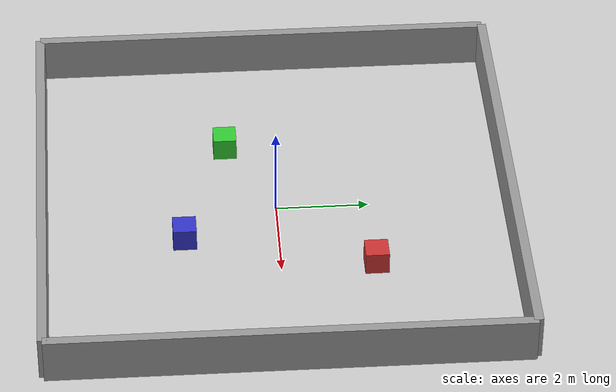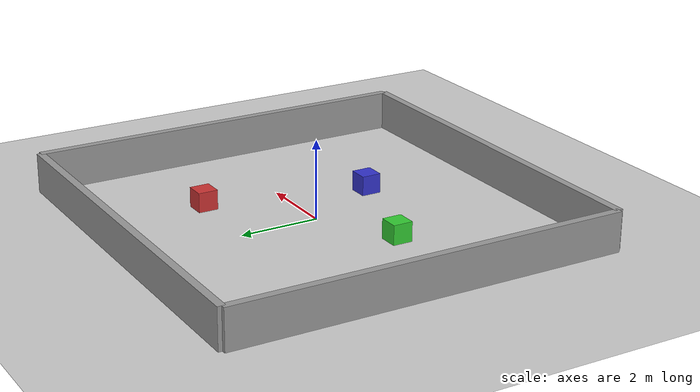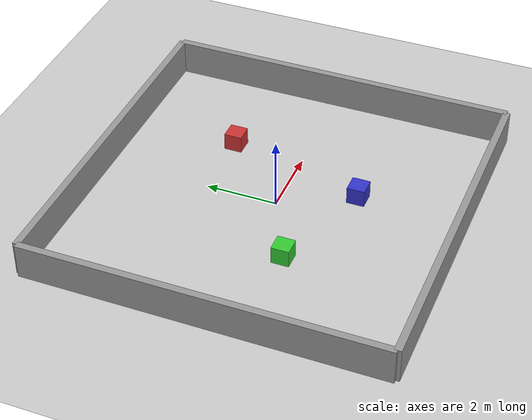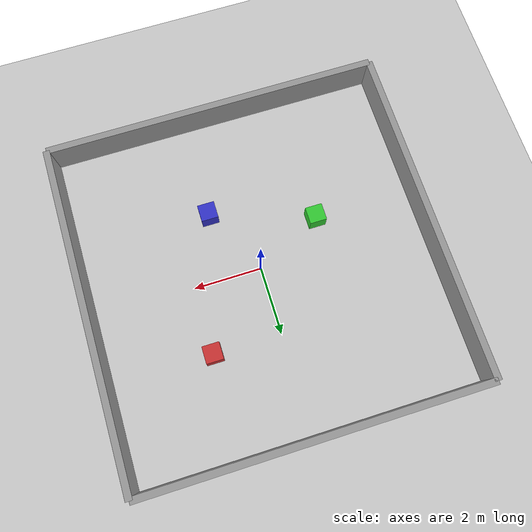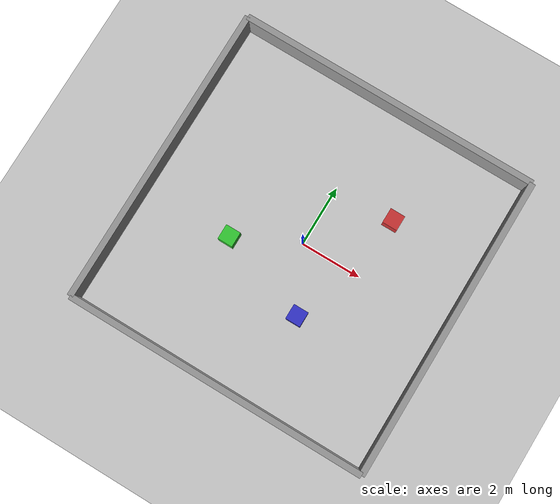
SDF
<?xml version="1.0" ?>
<sdf version="1.9">
  <world name="my_world">
    <physics name="1ms" type="ignored">
      <max_step_size>0.001</max_step_size>
      <real_time_factor>1.0</real_time_factor>
    </physics>
    <plugin filename="gz-sim-physics-system" name="gz::sim::systems::Physics"/>
    <plugin filename="gz-sim-user-commands-system" name="gz::sim::systems::UserCommands"/>
    <plugin filename="gz-sim-scene-broadcaster-system" name="gz::sim::systems::SceneBroadcaster"/>
    <plugin filename="gz-sim-sensors-system" name="gz::sim::systems::Sensors">
      <render_engine>ogre2</render_engine>
    </plugin>

    <light type="directional" name="sun">
      <cast_shadows>true</cast_shadows>
      <pose>0 0 10 0 0 0</pose>
      <diffuse>0.8 0.8 0.8 1</diffuse>
      <specular>0.2 0.2 0.2 1</specular>
      <attenuation><range>1000</range><constant>0.9</constant><linear>0.01</linear><quadratic>0.001</quadratic></attenuation>
      <direction>-0.5 0.1 -0.9</direction>
    </light>

    <model name="ground_plane">
      <static>true</static>
      <link name="link">
        <collision name="collision"><geometry><plane><normal>0 0 1</normal><size>20 20</size></plane></geometry></collision>
        <visual name="visual">
          <geometry><plane><normal>0 0 1</normal><size>20 20</size></plane></geometry>
          <material><ambient>0.8 0.8 0.8 1</ambient><diffuse>0.8 0.8 0.8 1</diffuse></material>
        </visual>
      </link>
    </model>

    <model name="wall_north">
      <static>true</static><pose>0 5 0.5 0 0 0</pose>
      <link name="link">
        <collision name="collision"><geometry><box><size>10 0.2 1</size></box></geometry></collision>
        <visual name="visual"><geometry><box><size>10 0.2 1</size></box></geometry><material><ambient>0.6 0.6 0.6 1</ambient><diffuse>0.6 0.6 0.6 1</diffuse></material></visual>
      </link>
    </model>
    <model name="wall_south">
      <static>true</static><pose>0 -5 0.5 0 0 0</pose>
      <link name="link">
        <collision name="collision"><geometry><box><size>10 0.2 1</size></box></geometry></collision>
        <visual name="visual"><geometry><box><size>10 0.2 1</size></box></geometry><material><ambient>0.6 0.6 0.6 1</ambient><diffuse>0.6 0.6 0.6 1</diffuse></material></visual>
      </link>
    </model>
    <model name="wall_east">
      <static>true</static><pose>5 0 0.5 0 0 1.5708</pose>
      <link name="link">
        <collision name="collision"><geometry><box><size>10 0.2 1</size></box></geometry></collision>
        <visual name="visual"><geometry><box><size>10 0.2 1</size></box></geometry><material><ambient>0.6 0.6 0.6 1</ambient><diffuse>0.6 0.6 0.6 1</diffuse></material></visual>
      </link>
    </model>
    <model name="wall_west">
      <static>true</static><pose>-5 0 0.5 0 0 1.5708</pose>
      <link name="link">
        <collision name="collision"><geometry><box><size>10 0.2 1</size></box></geometry></collision>
        <visual name="visual"><geometry><box><size>10 0.2 1</size></box></geometry><material><ambient>0.6 0.6 0.6 1</ambient><diffuse>0.6 0.6 0.6 1</diffuse></material></visual>
      </link>
    </model>

    <model name="obstacle_box_1">
      <static>true</static><pose>2 2 0.25 0 0 0</pose>
      <link name="link">
        <collision name="collision"><geometry><box><size>0.5 0.5 0.5</size></box></geometry></collision>
        <visual name="visual"><geometry><box><size>0.5 0.5 0.5</size></box></geometry><material><ambient>0.8 0.2 0.2 1</ambient><diffuse>0.8 0.2 0.2 1</diffuse></material></visual>
      </link>
    </model>
    <model name="obstacle_box_2">
      <static>true</static><pose>-2 -1 0.25 0 0 0</pose>
      <link name="link">
        <collision name="collision"><geometry><box><size>0.5 0.5 0.5</size></box></geometry></collision>
        <visual name="visual"><geometry><box><size>0.5 0.5 0.5</size></box></geometry><material><ambient>0.2 0.8 0.2 1</ambient><diffuse>0.2 0.8 0.2 1</diffuse></material></visual>
      </link>
    </model>
    <model name="obstacle_box_3">
      <static>true</static><pose>1 -2 0.25 0 0 0</pose>
      <link name="link">
        <collision name="collision"><geometry><box><size>0.5 0.5 0.5</size></box></geometry></collision>
        <visual name="visual"><geometry><box><size>0.5 0.5 0.5</size></box></geometry><material><ambient>0.2 0.2 0.8 1</ambient><diffuse>0.2 0.2 0.8 1</diffuse></material></visual>
      </link>
    </model>
  </world>
</sdf>
